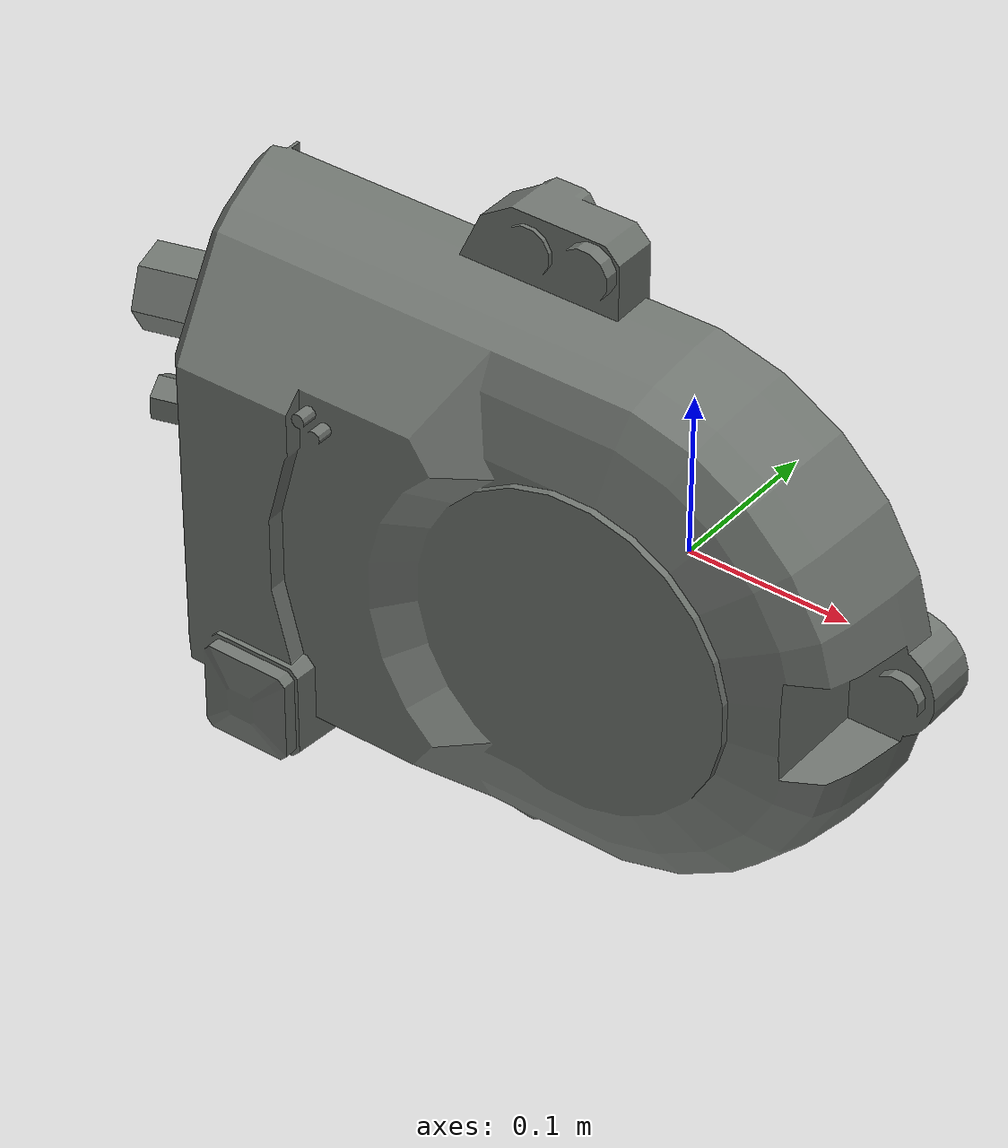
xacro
<?xml version="1.0" encoding="utf-8"?>
<robot name="torso"
  xmlns:xacro="http://wiki.ros.org/xacro">

  <link name="torso">
    <inertial>
      <origin xyz="-0.03310494863 -1.4589E-07 0.16945" rpy="0 0 0" />
      <mass value="${torso_mass}" />
      <inertia ixx="0.07055"
        ixy="4.2719E-07"
        ixz="0.0010388"
        iyy="0.059777"
        iyz="5.4507E-06"
        izz="0.063237" />
    </inertial>
    <visual>
      <origin xyz="0 0 0" rpy="0 0 0" />
      <geometry>
        <mesh filename="../meshes/base_link.obj" />
      </geometry>
      <material name="">
        <color rgba="0.43137 0.45098 0.43137 1" />
      </material>
    </visual>
  </link>
</robot>
